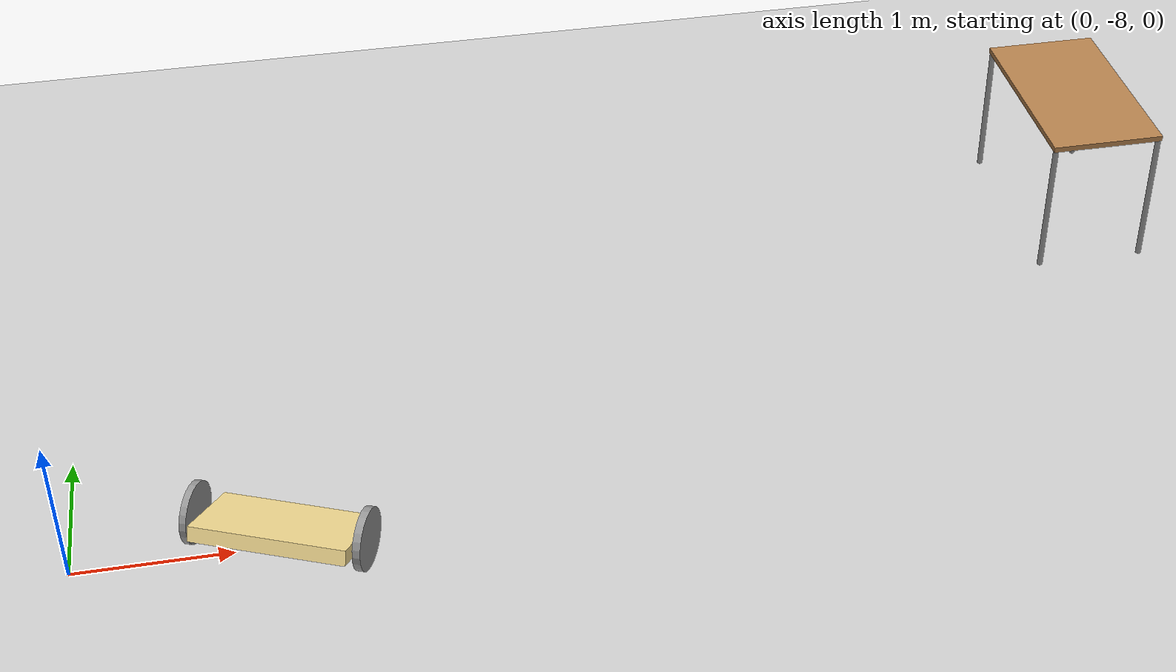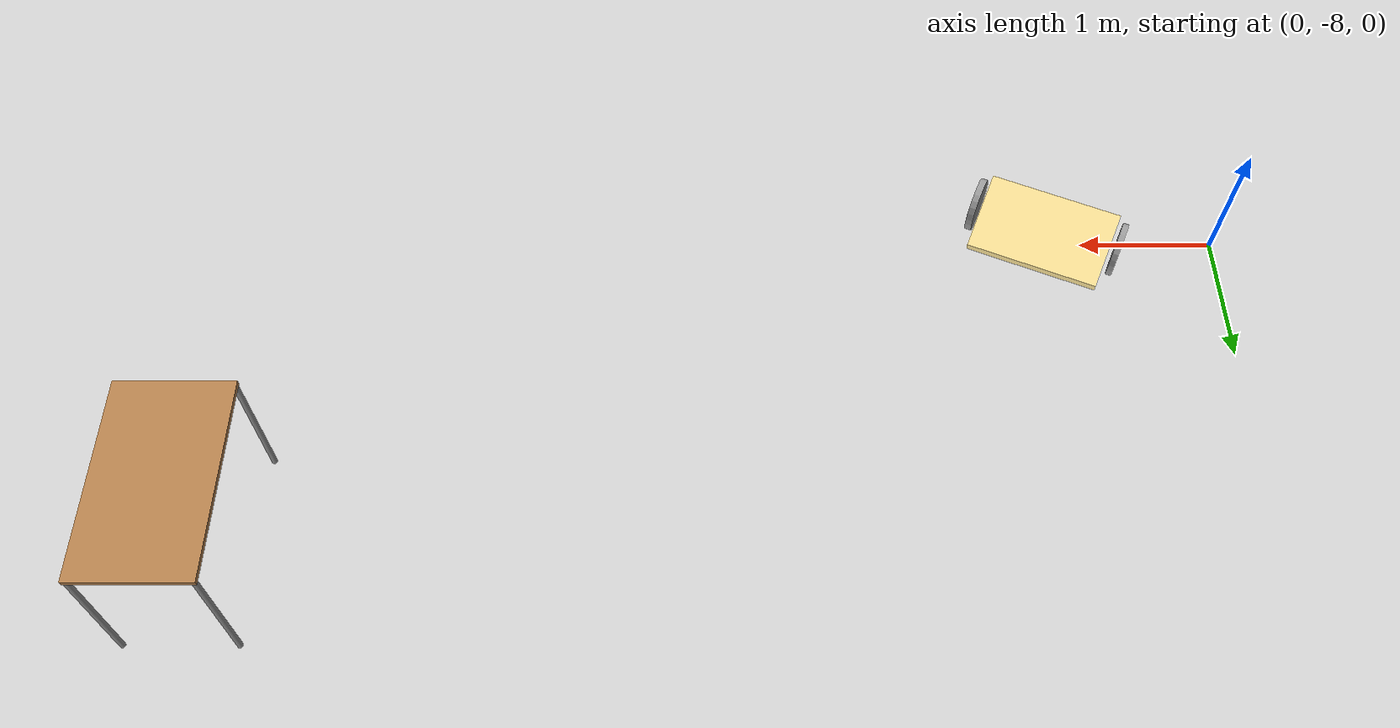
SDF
<sdf version="1.6">
 <world name="default">
  <model name="ground_plane">
   <static>1</static>
   <link name="link">
    <collision name="collision">
     <geometry><plane><normal>0 0 1</normal><size>100 100</size></plane></geometry>
     <surface><friction><ode><mu>100</mu><mu2>50</mu2></ode></friction></surface>
    </collision>
    <visual name="visual">
     <cast_shadows>0</cast_shadows>
     <geometry><plane><normal>0 0 1</normal><size>100 100</size></plane></geometry>
     <material>
      <script><uri>file://media/materials/scripts/gazebo.material</uri><name>Gazebo/Grey</name></script>
     </material>
    </visual>
   </link>
  </model>
  <model name="table_3_clone_clone_clone_0_clone">
   <static>0</static>
   <link name="link">
    <collision name="surface">
     <pose>0 0 1 0 -0 0</pose>
     <geometry><box><size>1.5 0.8 0.03</size></box></geometry>
     <surface><friction><ode><mu>0.6</mu><mu2>0.6</mu2></ode></friction></surface>
    </collision>
    <visual name="visual1">
     <pose>0 0 1 0 -0 0</pose>
     <geometry><box><size>1.4 0.8 0.04</size></box></geometry>
     <material>
      <script><uri>file://media/materials/scripts/gazebo.material</uri><name>Gazebo/Wood</name></script>
     </material>
    </visual>
    <collision name="front_left_leg">
     <pose>0.68 0.38 0.5 0 -0 0</pose>
     <geometry><cylinder><radius>0.02</radius><length>1</length></cylinder></geometry>
    </collision>
    <visual name="front_left_leg">
     <pose>0.68 0.38 0.5 0 -0 0</pose>
     <geometry><cylinder><radius>0.02</radius><length>1</length></cylinder></geometry>
     <material>
      <script><uri>file://media/materials/scripts/gazebo.material</uri><name>Gazebo/Grey</name></script>
     </material>
    </visual>
    <collision name="front_right_leg">
     <pose>0.68 -0.38 0.5 0 -0 0</pose>
     <geometry><cylinder><radius>0.02</radius><length>1</length></cylinder></geometry>
    </collision>
    <visual name="front_right_leg">
     <pose>0.68 -0.38 0.5 0 -0 0</pose>
     <geometry><cylinder><radius>0.02</radius><length>1</length></cylinder></geometry>
     <material>
      <script><uri>file://media/materials/scripts/gazebo.material</uri><name>Gazebo/Grey</name></script>
     </material>
    </visual>
    <collision name="back_right_leg">
     <pose>-0.68 -0.38 0.5 0 -0 0</pose>
     <geometry><cylinder><radius>0.02</radius><length>1</length></cylinder></geometry>
    </collision>
    <visual name="back_right_leg">
     <pose>-0.68 -0.38 0.5 0 -0 0</pose>
     <geometry><cylinder><radius>0.02</radius><length>1</length></cylinder></geometry>
     <material>
      <script><uri>file://media/materials/scripts/gazebo.material</uri><name>Gazebo/Grey</name></script>
     </material>
    </visual>
    <collision name="back_left_leg">
     <pose>-0.68 0.38 0.5 0 -0 0</pose>
     <geometry><cylinder><radius>0.02</radius><length>1</length></cylinder></geometry>
    </collision>
    <visual name="back_left_leg">
     <pose>-0.68 0.38 0.5 0 -0 0</pose>
     <geometry><cylinder><radius>0.02</radius><length>1</length></cylinder></geometry>
     <material>
      <script><uri>file://media/materials/scripts/gazebo.material</uri><name>Gazebo/Grey</name></script>
     </material>
    </visual>
    <inertial>
     <inertia><ixx>1</ixx><ixy>0</ixy><ixz>0</ixz><iyy>1</iyy><iyz>0</iyz><izz>1</izz></inertia>
     <mass>1</mass>
    </inertial>
   </link>
   <pose>7.24861 -5.42889 -2e-06 0 -0 1.57001</pose>
  </model>
  <model name="robot">
   <link name="link_0">
    <pose>0.038001 -0.005114 -0.035369 0 -0 0</pose>
    <inertial>
     <mass>3.09864</mass>
     <inertia>
      <ixx>0.260802</ixx>
      <ixy>0</ixy>
      <ixz>0</ixz>
      <iyy>0.090417</iyy>
      <iyz>0</iyz>
      <izz>0.346055</izz>
     </inertia>
    </inertial>
    <visual name="visual">
     <geometry><box><size>0.583228 1 0.1</size></box></geometry>
     <material>
      <lighting>1</lighting>
      <script><uri>file://media/materials/scripts/gazebo.material</uri><name>Gazebo/Grey</name></script>
      <ambient>1 0.9 0.6 1</ambient>
      <diffuse>1 0.9 0.6 1</diffuse>
      <specular>0.01 0.01 0.01 1</specular>
      <emissive>0 0 0 1</emissive>
      <shader type="vertex"><normal_map>__default__</normal_map></shader>
     </material>
    </visual>
    <collision name="collision">
     <geometry><box><size>0.583228 1 0.1</size></box></geometry>
     <surface>
      <friction>
       <ode><mu>1</mu><mu2>1</mu2><fdir1>0 0 0</fdir1><slip1>0</slip1><slip2>0</slip2></ode>
       <torsional>
        <coefficient>1</coefficient>
        <patch_radius>0</patch_radius>
        <surface_radius>0</surface_radius>
        <use_patch_radius>1</use_patch_radius>
        <ode><slip>0</slip></ode>
       </torsional>
      </friction>
      <bounce><restitution_coefficient>0</restitution_coefficient><threshold>1e+06</threshold></bounce>
      <contact>
       <collide_without_contact>0</collide_without_contact>
       <collide_without_contact_bitmask>1</collide_without_contact_bitmask>
       <collide_bitmask>1</collide_bitmask>
       <ode>
        <soft_cfm>0</soft_cfm>
        <soft_erp>0.2</soft_erp>
        <kp>1e+13</kp>
        <kd>1</kd>
        <max_vel>0.01</max_vel>
        <min_depth>0</min_depth>
       </ode>
       <bullet>
        <split_impulse>1</split_impulse>
        <split_impulse_penetration_threshold>-0.01</split_impulse_penetration_threshold>
        <soft_cfm>0</soft_cfm>
        <soft_erp>0.2</soft_erp>
        <kp>1e+13</kp>
        <kd>1</kd>
       </bullet>
      </contact>
     </surface>
    </collision>
   </link>
   <link name="link_1">
    <pose>-0 -0.550019 0 1.5707 -0 0</pose>
    <inertial>
     <mass>0.499601</mass>
     <inertia>
      <ixx>0.00509991</ixx>
      <ixy>0</ixy>
      <ixz>0</ixz>
      <iyy>0.00509991</iyy>
      <iyz>0</iyz>
      <izz>0.00999201</izz>
     </inertia>
    </inertial>
    <visual name="visual">
     <geometry><cylinder><radius>0.2</radius><length>0.049957</length></cylinder></geometry>
     <material>
      <lighting>1</lighting>
      <script><uri>file://media/materials/scripts/gazebo.material</uri><name>Gazebo/Grey</name></script>
      <ambient>0.5 0.5 0.5 1</ambient>
      <diffuse>0.5 0.5 0.5 1</diffuse>
      <specular>0.01 0.01 0.01 1</specular>
      <emissive>0 0 0 1</emissive>
      <shader type="vertex"><normal_map>__default__</normal_map></shader>
     </material>
    </visual>
    <collision name="collision">
     <geometry><cylinder><radius>0.2</radius><length>0.049957</length></cylinder></geometry>
     <surface>
      <friction>
       <ode><mu>1</mu><mu2>1</mu2><fdir1>0 0 0</fdir1><slip1>0</slip1><slip2>0</slip2></ode>
       <torsional>
        <coefficient>1</coefficient>
        <patch_radius>0</patch_radius>
        <surface_radius>0</surface_radius>
        <use_patch_radius>1</use_patch_radius>
        <ode><slip>0</slip></ode>
       </torsional>
      </friction>
      <bounce><restitution_coefficient>0</restitution_coefficient><threshold>1e+06</threshold></bounce>
      <contact>
       <collide_without_contact>0</collide_without_contact>
       <collide_without_contact_bitmask>1</collide_without_contact_bitmask>
       <collide_bitmask>1</collide_bitmask>
       <ode>
        <soft_cfm>0</soft_cfm>
        <soft_erp>0.2</soft_erp>
        <kp>1e+13</kp>
        <kd>1</kd>
        <max_vel>0.01</max_vel>
        <min_depth>0</min_depth>
       </ode>
       <bullet>
        <split_impulse>1</split_impulse>
        <split_impulse_penetration_threshold>-0.01</split_impulse_penetration_threshold>
        <soft_cfm>0</soft_cfm>
        <soft_erp>0.2</soft_erp>
        <kp>1e+13</kp>
        <kd>1</kd>
       </bullet>
      </contact>
     </surface>
    </collision>
   </link>
   <link name="link_1_clone">
    <pose>0 0.550019 -0 1.5707 -0 0</pose>
    <inertial>
     <mass>0.43298</mass>
     <inertia>
      <ixx>0.00439744</ixx>
      <ixy>0</ixy>
      <ixz>0</ixz>
      <iyy>0.00439744</iyy>
      <iyz>0</iyz>
      <izz>0.00865959</izz>
     </inertia>
    </inertial>
    <visual name="visual">
     <geometry><cylinder><radius>0.2</radius><length>0.0432982</length></cylinder></geometry>
     <material>
      <lighting>1</lighting>
      <script><uri>file://media/materials/scripts/gazebo.material</uri><name>Gazebo/Grey</name></script>
      <ambient>0.5 0.5 0.5 1</ambient>
      <diffuse>0.5 0.5 0.5 1</diffuse>
      <specular>0.01 0.01 0.01 1</specular>
      <emissive>0 0 0 1</emissive>
      <shader type="vertex"><normal_map>__default__</normal_map></shader>
     </material>
    </visual>
    <collision name="collision">
     <geometry><cylinder><radius>0.2</radius><length>0.043298</length></cylinder></geometry>
     <surface>
      <friction>
       <ode><mu>1</mu><mu2>1</mu2><fdir1>0 0 0</fdir1><slip1>0</slip1><slip2>0</slip2></ode>
       <torsional>
        <coefficient>1</coefficient>
        <patch_radius>0</patch_radius>
        <surface_radius>0</surface_radius>
        <use_patch_radius>1</use_patch_radius>
        <ode><slip>0</slip></ode>
       </torsional>
      </friction>
      <bounce><restitution_coefficient>0</restitution_coefficient><threshold>1e+06</threshold></bounce>
      <contact>
       <collide_without_contact>0</collide_without_contact>
       <collide_without_contact_bitmask>1</collide_without_contact_bitmask>
       <collide_bitmask>1</collide_bitmask>
       <ode>
        <soft_cfm>0</soft_cfm>
        <soft_erp>0.2</soft_erp>
        <kp>1e+13</kp>
        <kd>1</kd>
        <max_vel>0.01</max_vel>
        <min_depth>0</min_depth>
       </ode>
       <bullet>
        <split_impulse>1</split_impulse>
        <split_impulse_penetration_threshold>-0.01</split_impulse_penetration_threshold>
        <soft_cfm>0</soft_cfm>
        <soft_erp>0.2</soft_erp>
        <kp>1e+13</kp>
        <kd>1</kd>
       </bullet>
      </contact>
     </surface>
    </collision>
   </link>
   <joint name="link_0_JOINT_0" type="revolute">
    <parent>link_0</parent>
    <child>link_1</child>
    <axis>
     <xyz>0 0 1</xyz>
     <use_parent_model_frame>0</use_parent_model_frame>
     <limit>
      <lower>-1.79769e+308</lower>
      <upper>1.79769e+308</upper>
      <effort>-1</effort>
      <velocity>-1</velocity>
     </limit>
     <dynamics>
      <spring_reference>0</spring_reference>
      <spring_stiffness>0</spring_stiffness>
      <damping>0</damping>
      <friction>0</friction>
     </dynamics>
    </axis>
    <physics>
     <ode><limit><cfm>0</cfm><erp>0.2</erp></limit><suspension><cfm>0</cfm><erp>0.2</erp></suspension></ode>
    </physics>
   </joint>
   <joint name="link_0_JOINT_1" type="revolute">
    <parent>link_0</parent>
    <child>link_1_clone</child>
    <axis>
     <xyz>0 0 1</xyz>
     <use_parent_model_frame>0</use_parent_model_frame>
     <limit>
      <lower>-1.79769e+308</lower>
      <upper>1.79769e+308</upper>
      <effort>-1</effort>
      <velocity>-1</velocity>
     </limit>
     <dynamics>
      <spring_reference>0</spring_reference>
      <spring_stiffness>0</spring_stiffness>
      <damping>0</damping>
      <friction>0</friction>
     </dynamics>
    </axis>
    <physics>
     <ode><limit><cfm>0</cfm><erp>0.2</erp></limit><suspension><cfm>0</cfm><erp>0.2</erp></suspension></ode>
    </physics>
   </joint>
   <static>0</static>
   <pose>1.28995 -8.02668 0.200002 0 0.374406 1.16503</pose>
  </model>
  <model name="asphalt_plane">
   <static>1</static>
   <link name="link">
    <collision name="collision"><geometry><box><size>20 20 0.1</size></box></geometry></collision>
    <visual name="visual">
     <cast_shadows>0</cast_shadows>
     <geometry><box><size>20 20 0.1</size></box></geometry>
     <material>
      <script>
       <uri>model://asphalt_plane/materials/scripts</uri>
       <uri>model://asphalt_plane/materials/textures</uri>
       <name>vrc/asphalt</name>
      </script>
     </material>
    </visual>
   </link>
   <pose>-0.343897 -25.6982 0 0 -0 0</pose>
  </model>
 </world>
</sdf>
